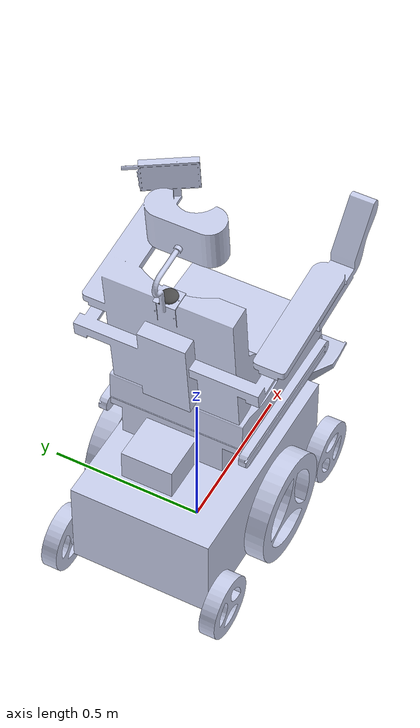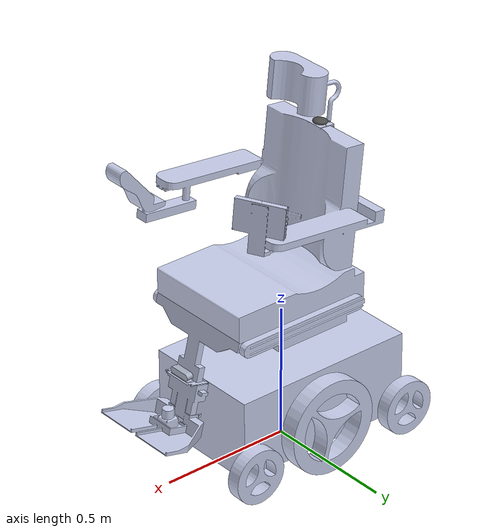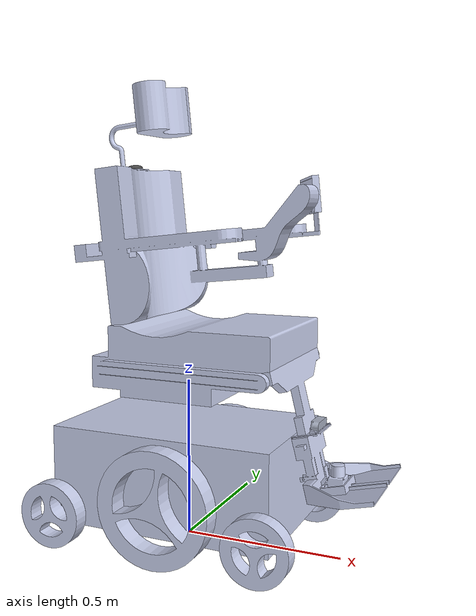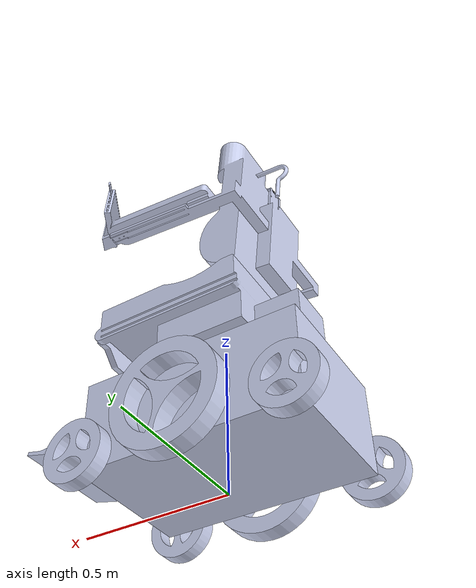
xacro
<?xml version="1.0"?>
<robot name="wheelchair" xmlns:xacro="http://ros.org/wiki/xacro">
    <xacro:arg name="sim" default="false"/>

    <xacro:include filename="$(find pwm_description)/urdf/defs.urdf.xacro"/>
    <xacro:include filename="$(find pwm_description)/urdf/wheelchairdev.gazebo"/>

    <xacro:macro name="alias" params="src dst">
        <link name="${dst}" />
        <joint name="alias_${src}_${dst}" type="fixed">
            <origin xyz="0 0 0" rpy="0 0 0"/>
            <parent link="${src}"/>
            <child link="${dst}"/>
        </joint>
    </xacro:macro>

    <link name="base_footprint">
    </link>

    <joint name="base_footprint_joint" type="fixed">
        <origin xyz="0 0 ${0.5*14*inch-0.1143}" rpy="0 0 0"/>
        <parent link="base_footprint"/>
        <child link="base_link"/>
    </joint>

    <link
        name="base_link">
        <inertial>
            <origin
                xyz="-5.97916491205108E-05 -5.55111512312578E-17 0.153027812315766"
                rpy="0 0 0" />
            <mass value="98.4139630936699" />
            <xacro:box_inertia x="0.711" y="0.457" z="0.305" mass="98.4"/>
        </inertial>
        <visual>
            <origin
                xyz="0 0 0"
                rpy="0 0 0" />
            <geometry>
                <mesh
                    filename="package://pwm_description/meshes/base_link.STL" />
            </geometry>
            <material
                name="">
                <color
                    rgba="0.792156862745098 0.819607843137255 0.933333333333333 1" />
            </material>
        </visual>
        <collision>
            <origin xyz="0.0 0.0 0.152400001884" rpy="0 0 0"/>
            <geometry>
                <box size="0.711199998856 0.457199990749 0.304800003767"/>
            </geometry>
        </collision>
    </link>

    <link
        name="seat_link">
        <inertial>
            <origin
                xyz="-0.0332097722373201 0.00406938602338047 0.0228912507671721"
                rpy="0 0 0" />
            <mass
                value="39.8904807609114" />
            <inertia
                ixx="0.122921824576847"
                ixy="0.0164619739758286"
                ixz="-0.146470483923146"
                iyy="0.316753450399423"
                iyz="0.0119623440768997"
                izz="0.196633649371876" />
        </inertial>
        <visual>
            <origin
                xyz="0 0 0"
                rpy="0 0 0" />
            <geometry>
                <mesh
                    filename="package://pwm_description/meshes/seat_link.STL" />
            </geometry>
            <material
                name="">
                <color
                    rgba="0.792156862745098 0.819607843137255 0.933333333333333 1" />
            </material>
        </visual>
        <collision>
            <origin xyz="-0.0635000020266 7.45058059692e-09 0.0127000026405" rpy="0 0 0"/>
            <geometry>
                <box size="0.660400032997 0.482599973679 0.228599995375"/>
            </geometry>
        </collision>
    </link>

    <joint
        name="seat_joint"
        type="fixed">
        <origin
            xyz="0.0889000000000003 -0.0126999999999997 0.50361"
            rpy="0 0 0" />
        <parent
            link="base_link" />
        <child
            link="seat_link" />
        <axis
            xyz="0 0 1" />
        <limit lower="0.0" upper="0.3" effort="1500" velocity="0.5" />
    </joint>

    <link
        name="footrest_link">
        <inertial>
            <origin
                xyz="0.055498 -0.21402 -5.5629E-05"
                rpy="0 0 0" />
            <mass
                value="2.24583004981917" />
            <inertia
                ixx="0.00172839866541921"
                ixy="0.000772961959349029"
                ixz="3.16929282986145E-06"
                iyy="0.00047716278384899"
                iyz="-6.88732971243823E-06"
                izz="0.00207972567905554" />
        </inertial>
        <visual>
            <origin
                xyz="0 0 0"
                rpy="0 0 0" />
            <geometry>
                <mesh
                    filename="package://pwm_description/meshes/footrest_link.STL" />
            </geometry>
            <material
                name="">
                <color
                    rgba="0.792156862745098 0.819607843137255 0.933333333333333 1" />
            </material>
        </visual>
        <collision>
            <origin
                xyz="0 0 0"
                rpy="0 0 0" />
            <geometry>
                <mesh
                    filename="package://pwm_description/meshes/footrest_link.STL" />
            </geometry>
        </collision>
    </link>
    <joint
        name="footrest_joint"
        type="fixed"> <!-- TODO : technically revolute, broken for our chair -->
        <origin
            xyz="0.2667 0 0.0317500000000001"
            rpy="1.5707963267949 0 0" />
        <parent
            link="seat_link" />
        <child
            link="footrest_link" />
        <axis
            xyz="0 0 -1" />
    </joint>
    <link
        name="laser">
        <inertial>
            <origin
                xyz="-0.0028645 3.9558E-06 -0.019418"
                rpy="0 0 0" />
            <mass
                value="0.13624" />
            <inertia
                ixx="4.024E-05"
                ixy="1.4318E-08"
                ixz="-6.2254E-08"
                iyy="4.1714E-05"
                iyz="1.0354E-08"
                izz="1.4743E-06" />
        </inertial>
        <visual>
            <origin
                xyz="0 0 0"
                rpy="0 0 0" />
            <geometry>
                <mesh
                    filename="package://pwm_description/meshes/lidar_link.STL" />
            </geometry>
            <material
                name="">
                <color
                    rgba="0.79216 0.81961 0.93333 1" />
            </material>
        </visual>
        <collision>
            <origin xyz="-0.00884072016925 0.0 -0.0141306817532" rpy="0 0 0"/>
            <geometry>
                <box size="0.0632499977946 0.0500000007451 0.070000000298"/>
            </geometry>
        </collision>
    </link>
    <joint
        name="laser_joint"
        type="fixed">
        <origin
            xyz="0.13695 -0.32488 -0.00060405"
            rpy="-1.5708 8.2132E-18 0.026657" />
        <parent
            link="footrest_link" />
        <child
            link="laser" />
        <axis
            xyz="0 0 1" />
    </joint>

    <link name="imu">
        <inertial>
            <origin rpy="0 0 0" xyz="0 0 0"/>
            <mass value="1e-2"/>
            <xacro:box_inertia x="1e-2" y="1e-2" z="1e-2" mass="1e-2"/>
        </inertial>
        <visual>
            <origin rpy="0 0 0" xyz="0 0 0"/>
            <geometry>
                <box size="1e-2 1e-2 1e-2"/>
            </geometry>
        </visual>
        <collision>
            <origin rpy="0 0 0" xyz="0 0 0"/>
            <geometry>
                <box size="1e-2 1e-2 1e-2"/>
            </geometry>
        </collision>
    </link>

    <joint name="imu_joint" type="fixed">
        <origin xyz="0.13695 -0.32488 -0.00060405"
            rpy="-1.5708 0 0.22" />
        <parent link="footrest_link"/>
        <child link="imu"/>
        <axis xyz="1 0 0"/>
    </joint>

	<!-- add phidgets -->
	<link name="pimu">
	</link>
	<joint name="pimu_joint" type="fixed">
		<origin xyz="-0.2 0.0 0.72" rpy="0 0.04 0"/>
		<parent link="base_footprint"/>
		<child link="pimu"/>
		<axis xyz="1 0 0"/>
	</joint>

    <link
        name="camera_link">
        <inertial>
            <origin
                xyz="-0.012211 0.001403 8.0403E-05"
                rpy="0 0 0" />
            <mass
                value="0.050576" />
            <xacro:box_inertia x="1e-2" y="1e-2" z="1e-2" mass="1e-2"/>
        </inertial>
        <visual>
            <origin
                xyz="0 0 0"
                rpy="0 0 0" />
            <geometry>
                <mesh
                    filename="package://pwm_description/meshes/realsense_link.STL" />
            </geometry>
            <material
                name="">
                <color
                    rgba="0.66667 0.69804 0.76863 1" />
            </material>
        </visual>
        <collision>
            <origin xyz="-0.0125249996781 0.0 0.0" rpy="0 0 0"/>
            <geometry>
                <box size="0.0250499993563 0.0900000035763 0.0250000003725"/>
            </geometry>
        </collision>
    </link>
    <joint
        name="camera_joint"
        type="fixed">
        <origin
            xyz="0.085134 -0.18956 -0.00127"
            rpy="-1.5708 0.0 -0.05" />
        <parent
            link="footrest_link" />
        <child
            link="camera_link" />
        <axis
            xyz="0 0 1" />
    </joint>

    <!-- optical frame -->
    <link name="camera_optical"/>
    <joint name="camera_optical_joint" type="fixed">
        <origin xyz="0 0 0" rpy="${-pi/2} 0 ${-pi/2}"/>
        <parent link="camera_link"/>
        <child link="camera_optical"/>
    </joint>

    <!-- setup aliases for compatibility with realsense -->

    <xacro:if value="$(arg sim)">
        <xacro:alias src="camera_link" dst="camera_color_frame"/>
        <xacro:alias src="camera_link" dst="camera_depth_frame"/>
        <xacro:alias src="camera_link" dst="camera_infra1_frame"/>
        <xacro:alias src="camera_link" dst="camera_infra2_frame"/>

        <xacro:alias src="camera_optical" dst="camera_color_optical_frame"/>
        <xacro:alias src="camera_optical" dst="camera_depth_optical_frame"/>
        <xacro:alias src="camera_optical" dst="camera_infra2_optical_frame"/>
        <xacro:alias src="camera_optical" dst="camera_infra1_optical_frame"/>
    </xacro:if>

    <link
        name="back_link">
        <inertial>
            <origin
                xyz="0.06802 0.27418 0.010362"
                rpy="0 0 0" />
            <mass
                value="21.3849460447243" />
            <inertia
                ixx="0.638823322523092"
                ixy="-0.0353788477032128"
                ixz="-0.147324675628681"
                iyy="0.612040467785112"
                iyz="0.00497982785800062"
                izz="0.731113551637578" />
        </inertial>
        <visual>
            <origin
                xyz="0 0 0"
                rpy="0 0 0" />
            <geometry>
                <mesh
                    filename="package://pwm_description/meshes/back_link.STL" />
            </geometry>
            <material
                name="">
                <color
                    rgba="0.792156862745098 0.819607843137255 0.933333333333333 1" />
            </material>
        </visual>
        <collision>
            <origin xyz="0.256545692682 0.355273872614 -0.0322397202253" rpy="0 0 0"/>
            <geometry>
                <box size="0.75830322504 0.710547745228 0.710565447807"/>
            </geometry>
        </collision>
    </link>
    <joint
        name="back_joint"
        type="fixed">
        <origin
            xyz="-0.23495 0 0.127"
            rpy="1.5707963267949 0 0" />
        <parent
            link="seat_link" />
        <child
            link="back_link" />
        <axis
            xyz="0 0 -1" />
        <limit lower="-3.14" upper="3.14" effort="1500" velocity="0.5" />
    </joint>
    <link
        name="gps">
        <inertial>
            <origin
                xyz="-0.00052822 0.00021277 0.0091581"
                rpy="0 0 0" />
            <mass
                value="0.026768" />
            <xacro:box_inertia x="1e-2" y="1e-2" z="1e-2" mass="1e-2"/>
        </inertial>
        <visual>
            <origin
                xyz="0 0 0"
                rpy="0 0 0" />
            <geometry>
                <mesh
                    filename="package://pwm_description/meshes/gps_link.STL" />
            </geometry>
            <material
                name="">
                <color
                    rgba="0.29804 0.29804 0.29804 1" />
            </material>
        </visual>
        <collision>
            <origin xyz="-0.00362478382885 0.0 0.00983087625355" rpy="0 0 0"/>
            <geometry>
                <box size="0.0597429461777 0.0525326915085 0.0197107437998"/>
            </geometry>
        </collision>
    </link>
    <joint
        name="gps_joint"
        type="fixed">
        <origin
            xyz="-0.032953 0.4537 -0.0003404"
            rpy="-1.5708 -1.7107E-16 0.10298" />
        <parent
            link="back_link" />
        <child
            link="gps" />
        <axis
            xyz="0 0 1" />
    </joint>
    <link
        name="right_wheel_link">
        <inertial>
            <origin
                xyz="0 0 0"
                rpy="0 0 0" />
            <mass
                value="${4.0*lb}" />
            <xacro:cylinder_inertia m="${4.0*lb}" r="${0.5*14*inch}" h="${2.5*inch}"/>
        </inertial>
        <visual>
            <origin
                xyz="0 0 0"
                rpy="0 0 0" />
            <geometry>
                <mesh
                    filename="package://pwm_description/meshes/right_wheel_link.STL" />
            </geometry>
            <material
                name="">
                <color
                    rgba="0.792156862745098 0.819607843137255 0.933333333333333 1" />
            </material>
        </visual>
        <collision>
            <origin
                xyz="0 0 0"
                rpy="0 0 0" />
            <geometry>
                <cylinder length="${2.5*inch}" radius="${0.5*14*inch}"/>
            </geometry>
        </collision>
    </link>
    <joint
        name="right_wheel_joint"
        type="continuous">
        <origin
            xyz="0.0254 -0.3048 0.1143"
            rpy="-1.5708 0 0" />
        <parent
            link="base_link" />
        <child
            link="right_wheel_link" />
        <axis
            xyz="0 0 1" />
    </joint>
    <link
        name="left_wheel_link">
        <inertial>
            <origin
                xyz="0 0 0"
                rpy="0 0 0" />
            <mass
                value="${4.0*lb}" />
            <xacro:cylinder_inertia m="${4.0*lb}" r="${0.5*14*inch}" h="${2.5*inch}"/>
        </inertial>
        <visual>
            <origin
                xyz="0 0 0"
                rpy="0 0 0" />
            <geometry>
                <mesh
                    filename="package://pwm_description/meshes/left_wheel_link.STL" />
            </geometry>
            <material
                name="">
                <color
                    rgba="0.79216 0.81961 0.93333 1" />
            </material>
        </visual>
        <collision>
            <origin
                xyz="0 0 0"
                rpy="0 0 0" />
            <geometry>
                <cylinder length="${2.5*inch}" radius="${0.5*14*inch}"/>
            </geometry>
        </collision>
    </link>
    <joint
        name="left_wheel_joint"
        type="continuous">
        <origin
            xyz="0.0254 0.3048 0.1143"
            rpy="-1.5708 0 0" />
        <parent
            link="base_link" />
        <child
            link="left_wheel_link" />
        <axis
            xyz="0 0 1" />
    </joint>
    <link
        name="caster_fl_link">
        <inertial>
            <origin
                xyz="0 0 0"
                rpy="0 0 0" />
            <mass
                value="${2.0*lb}" />
            <xacro:sphere_inertia m="${2.0*lb}" r="${0.5*8*inch}"/>
        </inertial>
        <visual>
            <origin
                xyz="0 0 0"
                rpy="0 0 0" />
            <geometry>
                <mesh
                    filename="package://pwm_description/meshes/caster_fl_link.STL" />
            </geometry>
            <material
                name="">
                <color
                    rgba="0.792156862745098 0.819607843137255 0.933333333333333 1" />
            </material>
        </visual>
        <collision>
            <origin
                xyz="0 0 0"
                rpy="0 0 0" />

            <geometry>
                <sphere radius="${0.5*8*inch}"/>
            </geometry>
        </collision>
    </link>
    <joint
        name="caster_fl_joint"
        type="fixed">
        <origin
            xyz="0.33655 0.2667 0.0381"
            rpy="1.5708 0 3.1416" />
        <parent
            link="base_link" />
        <child
            link="caster_fl_link" />
        <axis
            xyz="0 0 1" />
    </joint>
    <link
        name="caster_bl_link">
        <inertial>
            <origin
                xyz="0 0 0"
                rpy="0 0 0" />
            <mass
                value="${2.0*lb}" />
            <xacro:sphere_inertia m="${2.0*lb}" r="${0.5*8*inch}"/>
        </inertial>
        <visual>
            <origin
                xyz="0 0 0"
                rpy="0 0 0" />
            <geometry>
                <mesh
                    filename="package://pwm_description/meshes/caster_bl_link.STL" />
            </geometry>
            <material
                name="">
                <color
                    rgba="0.79216 0.81961 0.93333 1" />
            </material>
        </visual>
        <collision>
            <origin
                xyz="0 0 0"
                rpy="0 0 0" />

            <geometry>
                <sphere radius="${0.5*8*inch}"/>
            </geometry>
        </collision>
    </link>
    <joint
        name="caster_bl_joint"
        type="fixed">
        <origin
            xyz="-0.33655 0.2667 0.0381"
            rpy="1.5708 0 3.1416" />
        <parent
            link="base_link" />
        <child
            link="caster_bl_link" />
        <axis
            xyz="0 0 1" />
    </joint>
    <link
        name="caster_fr_link">
        <inertial>
            <origin
                xyz="0 0 0"
                rpy="0 0 0" />
            <mass
                value="${2.0*lb}" />
            <xacro:sphere_inertia m="${2.0*lb}" r="${0.5*8*inch}"/>
        </inertial>
        <visual>
            <origin
                xyz="0 0 0"
                rpy="0 0 0" />
            <geometry>
                <mesh
                    filename="package://pwm_description/meshes/caster_fr_link.STL" />
            </geometry>
            <material
                name="">
                <color
                    rgba="0.79216 0.81961 0.93333 1" />
            </material>
        </visual>
        <collision>
            <origin
                xyz="0 0 0"
                rpy="0 0 0" />
            <geometry>
                <sphere radius="${0.5*8*inch}"/>
            </geometry>
        </collision>
    </link>
    <joint
        name="caster_fr_joint"
        type="fixed">
        <origin
            xyz="0.33655 -0.2667 0.0381"
            rpy="1.5708 0 3.1416" />
        <parent
            link="base_link" />
        <child
            link="caster_fr_link" />
        <axis
            xyz="0 0 1" />
    </joint>
    <link
        name="caster_br_link">
        <inertial>
            <origin
                xyz="-5.9792E-05 -5.5511E-17 0.15303"
                rpy="0 0 0" />
            <mass
                value="${2.0*lb}" />
            <xacro:sphere_inertia m="${2.0*lb}" r="${0.5*8*inch}"/>
        </inertial>
        <visual>
            <origin
                xyz="0 0 0"
                rpy="0 0 0" />
            <geometry>
                <mesh
                    filename="package://pwm_description/meshes/caster_br_link.STL" />
            </geometry>
            <material
                name="">
                <color
                    rgba="0.79216 0.81961 0.93333 1" />
            </material>
        </visual>
        <collision>
            <origin
                xyz="0 0 0"
                rpy="0 0 0" />
            <geometry>
                <sphere radius="${0.5*8*inch}"/>
            </geometry>

        </collision>
    </link>
    <joint
        name="caster_br_joint"
        type="fixed">
        <origin
            xyz="-0.33655 -0.2667 0.0381"
            rpy="1.5708 0 3.1416" />
        <parent
            link="base_link" />
        <child
            link="caster_br_link" />
        <axis
            xyz="0 0 1" />
    </joint>

    <!-- transmission -->
    <transmission name="right_wheel_transmission">
        <type>transmission_interface/SimpleTransmission</type>
        <actuator name="right_wheel_motor">
            <hardwareInterface>hardware_interface/VelocityJointInterface</hardwareInterface>
            <mechanicalReduction>1</mechanicalReduction>
        </actuator>
        <joint name="right_wheel_joint">
            <hardwareInterface>hardware_interface/VelocityJointInterface</hardwareInterface>
        </joint>
    </transmission>

    <transmission name="left_wheel_transmission">
        <type>transmission_interface/SimpleTransmission</type>
        <actuator name="left_wheel_motor">
            <hardwareInterface>hardware_interface/VelocityJointInterface</hardwareInterface>
            <mechanicalReduction>1</mechanicalReduction>
        </actuator>
        <joint name="left_wheel_joint">
            <hardwareInterface>hardware_interface/VelocityJointInterface</hardwareInterface>
        </joint>
    </transmission>

</robot>

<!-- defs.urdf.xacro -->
<robot xmlns:xacro="http://ros.org/wiki/xacro" name="defs">

	<!-- conversion units -->
	<xacro:property name="inch" value="0.0254"/>
	<xacro:property name="lb" value="0.453592"/>
	<xacro:property name="deg" value="${pi/180.0}"/>

    <!-- cylinder inertia about z axis -->
	<xacro:macro name="cylinder_inertia" params="m r h">
		<inertia  ixx="${m*(3*r*r+h*h)/12}" ixy = "0" ixz = "0"
			iyy="${m*(3*r*r+h*h)/12}" iyz = "0"
			izz="${m*r*r/2}"
			/>
	</xacro:macro>

    <!-- box inertia -->
	<xacro:macro name="box_inertia" params="x y z mass">
		<inertia ixx="${0.0833333 * mass * (y*y + z*z)}" ixy="0.0" ixz="0.0"
			iyy="${0.0833333 * mass * (x*x + z*z)}" iyz="0.0"
			izz="${0.0833333 * mass * (x*x + y*y)}" />
	</xacro:macro>

    <xacro:macro name="sphere_inertia" params="r m">
		<inertia ixx="${0.4*m*r*r}" ixy="0.0" ixz="0.0"
			iyy="${0.4*m*r*r}" iyz="0.0"
			izz="${0.4*m*r*r}" />
    </xacro:macro>

</robot>
